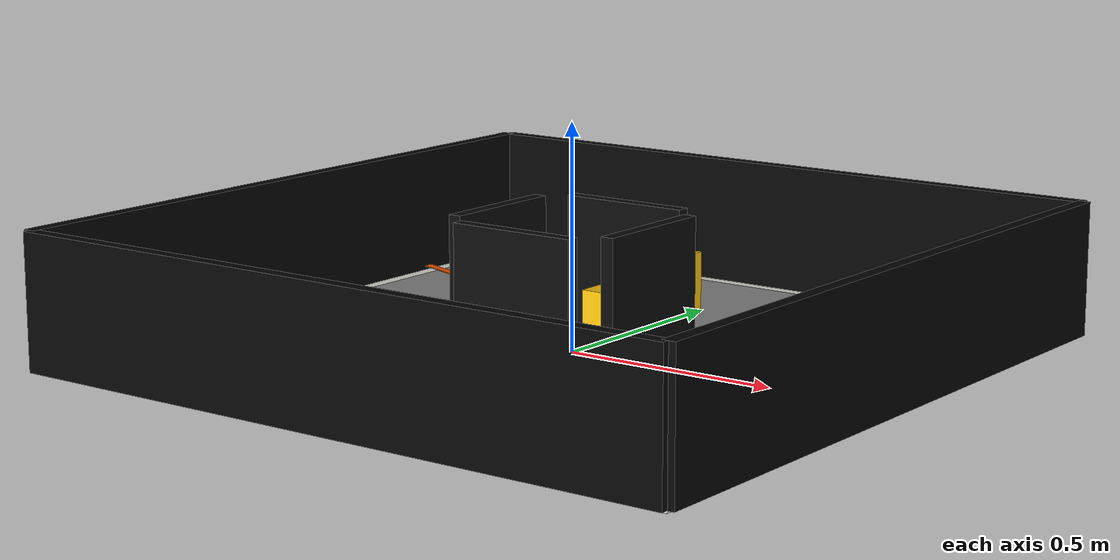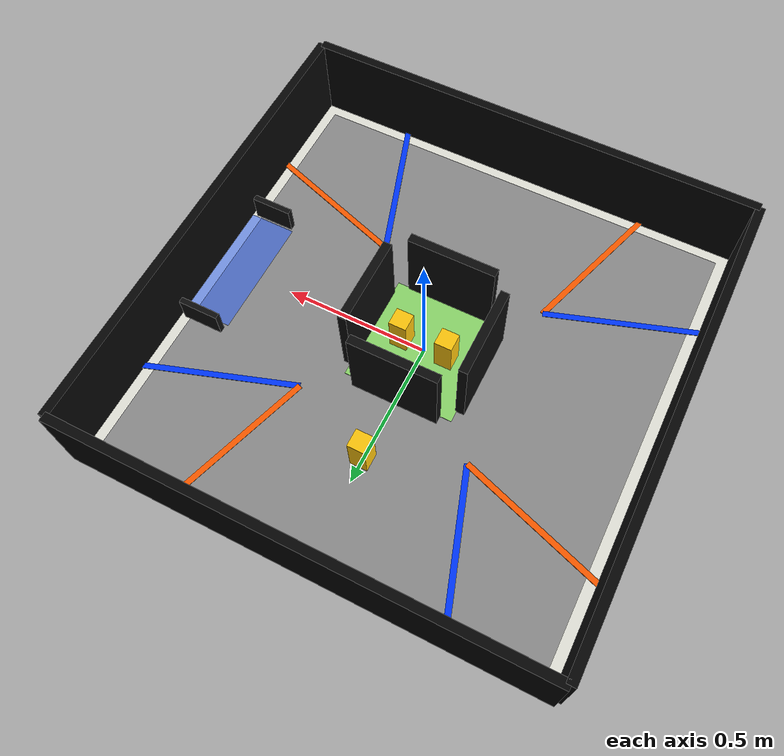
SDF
<sdf version="1.8">
 <world name="wro2026">
  <physics name="fast_step" type="ignored">
   <max_step_size>0.005</max_step_size>
   <real_time_factor>1.0</real_time_factor>
  </physics>
  <plugin filename="gz-sim-physics-system" name="gz::sim::systems::Physics"/>
  <plugin filename="gz-sim-sensors-system" name="gz::sim::systems::Sensors">
   <render_engine>ogre2</render_engine>
  </plugin>
  <plugin filename="gz-sim-scene-broadcaster-system" name="gz::sim::systems::SceneBroadcaster"/>
  <plugin filename="gz-sim-user-commands-system" name="gz::sim::systems::UserCommands"/>
  <light name="sun" type="directional">
   <cast_shadows>false</cast_shadows>
   <pose>0 0 10 0 0 0</pose>
   <diffuse>0.8 0.8 0.8 1</diffuse>
   <specular>0.1 0.1 0.1 1</specular>
   <direction>-0.5 0.1 -0.9</direction>
  </light>
  <model name="ground_1600">
   <static>true</static>
   <link name="link">
    <collision name="col"><geometry><box><size>1.6 1.6 0.01</size></box></geometry></collision>
    <visual name="base">
     <geometry><box><size>1.6 1.6 0.01</size></box></geometry>
     <material><ambient>0.90 0.90 0.86 1</ambient><diffuse>0.90 0.90 0.86 1</diffuse></material>
    </visual>
    <visual name="track">
     <pose>0 0 0.006 0 0 0</pose>
     <geometry><box><size>1.50 1.50 0.002</size></box></geometry>
     <material><ambient>0.55 0.55 0.55 1</ambient><diffuse>0.55 0.55 0.55 1</diffuse></material>
    </visual>
   </link>
  </model>
  <model name="wall_north">
   <static>true</static>
   <pose>0 0.8 0.15 0 0 0</pose>
   <link name="link">
    <collision name="col"><geometry><box><size>1.6 0.03 0.30</size></box></geometry></collision>
    <visual name="vis">
     <geometry><box><size>1.6 0.03 0.30</size></box></geometry>
     <material><ambient>0.02 0.02 0.02 1</ambient><diffuse>0.02 0.02 0.02 1</diffuse></material>
    </visual>
   </link>
  </model>
  <model name="wall_south">
   <static>true</static>
   <pose>0 -0.8 0.15 0 0 0</pose>
   <link name="link">
    <collision name="col"><geometry><box><size>1.6 0.03 0.30</size></box></geometry></collision>
    <visual name="vis">
     <geometry><box><size>1.6 0.03 0.30</size></box></geometry>
     <material><ambient>0.02 0.02 0.02 1</ambient><diffuse>0.02 0.02 0.02 1</diffuse></material>
    </visual>
   </link>
  </model>
  <model name="wall_east">
   <static>true</static>
   <pose>0.8 0 0.15 0 0 0</pose>
   <link name="link">
    <collision name="col"><geometry><box><size>0.03 1.6 0.30</size></box></geometry></collision>
    <visual name="vis">
     <geometry><box><size>0.03 1.6 0.30</size></box></geometry>
     <material><ambient>0.02 0.02 0.02 1</ambient><diffuse>0.02 0.02 0.02 1</diffuse></material>
    </visual>
   </link>
  </model>
  <model name="wall_west">
   <static>true</static>
   <pose>-0.8 0 0.15 0 0 0</pose>
   <link name="link">
    <collision name="col"><geometry><box><size>0.03 1.6 0.30</size></box></geometry></collision>
    <visual name="vis">
     <geometry><box><size>0.03 1.6 0.30</size></box></geometry>
     <material><ambient>0.02 0.02 0.02 1</ambient><diffuse>0.02 0.02 0.02 1</diffuse></material>
    </visual>
   </link>
  </model>
  <model name="central_island_floor">
   <static>true</static>
   <pose>0 0 0.011 0 0 0</pose>
   <link name="link">
    <visual name="green_center">
     <geometry><box><size>0.38 0.38 0.002</size></box></geometry>
     <material><ambient>0.55 0.85 0.42 1</ambient><diffuse>0.55 0.85 0.42 1</diffuse></material>
    </visual>
   </link>
  </model>
  <model name="island_wall_north">
   <static>true</static>
   <pose>0 0.2 0.15 0 0 0</pose>
   <link name="link">
    <collision name="col"><geometry><box><size>0.30 0.03 0.30</size></box></geometry></collision>
    <visual name="vis">
     <geometry><box><size>0.30 0.03 0.30</size></box></geometry>
     <material><ambient>0.04 0.04 0.04 1</ambient><diffuse>0.04 0.04 0.04 1</diffuse></material>
    </visual>
   </link>
  </model>
  <model name="island_wall_south">
   <static>true</static>
   <pose>0 -0.2 0.15 0 0 0</pose>
   <link name="link">
    <collision name="col"><geometry><box><size>0.30 0.03 0.30</size></box></geometry></collision>
    <visual name="vis">
     <geometry><box><size>0.30 0.03 0.30</size></box></geometry>
     <material><ambient>0.04 0.04 0.04 1</ambient><diffuse>0.04 0.04 0.04 1</diffuse></material>
    </visual>
   </link>
  </model>
  <model name="island_wall_east">
   <static>true</static>
   <pose>0.2 0 0.15 0 0 0</pose>
   <link name="link">
    <collision name="col"><geometry><box><size>0.03 0.30 0.30</size></box></geometry></collision>
    <visual name="vis">
     <geometry><box><size>0.03 0.30 0.30</size></box></geometry>
     <material><ambient>0.04 0.04 0.04 1</ambient><diffuse>0.04 0.04 0.04 1</diffuse></material>
    </visual>
   </link>
  </model>
  <model name="island_wall_west">
   <static>true</static>
   <pose>-0.2 0 0.15 0 0 0</pose>
   <link name="link">
    <collision name="col"><geometry><box><size>0.03 0.30 0.30</size></box></geometry></collision>
    <visual name="vis">
     <geometry><box><size>0.03 0.30 0.30</size></box></geometry>
     <material><ambient>0.04 0.04 0.04 1</ambient><diffuse>0.04 0.04 0.04 1</diffuse></material>
    </visual>
   </link>
  </model>
  <model name="parking_zone">
   <static>true</static>
   <pose>0.70 0 0.013 0 0 0</pose>
   <link name="link">
    <visual name="vis">
     <geometry><box><size>0.16 0.42 0.002</size></box></geometry>
     <material><ambient>0.16 0.38 1.0 0.55</ambient><diffuse>0.16 0.38 1.0 0.55</diffuse></material>
    </visual>
   </link>
  </model>
  <model name="parking_block_top">
   <static>true</static>
   <pose>0.70 0.23 0.05 0 0 0</pose>
   <link name="link">
    <visual name="vis">
     <geometry><box><size>0.14 0.02 0.10</size></box></geometry>
     <material><ambient>0.05 0.05 0.05 1</ambient><diffuse>0.05 0.05 0.05 1</diffuse></material>
    </visual>
   </link>
  </model>
  <model name="parking_block_bottom">
   <static>true</static>
   <pose>0.70 -0.23 0.05 0 0 0</pose>
   <link name="link">
    <visual name="vis">
     <geometry><box><size>0.14 0.02 0.10</size></box></geometry>
     <material><ambient>0.05 0.05 0.05 1</ambient><diffuse>0.05 0.05 0.05 1</diffuse></material>
    </visual>
   </link>
  </model>
  <model name="obstacle_yellow_left">
   <static>true</static>
   <pose>-0.08 0.00 0.075 0 0 0</pose>
   <link name="link">
    <collision name="col"><geometry><box><size>0.06 0.06 0.15</size></box></geometry></collision>
    <visual name="vis">
     <geometry><box><size>0.06 0.06 0.15</size></box></geometry>
     <material><ambient>1.0 0.78 0.05 1</ambient><diffuse>1.0 0.78 0.05 1</diffuse></material>
    </visual>
   </link>
  </model>
  <model name="obstacle_yellow_mid">
   <static>true</static>
   <pose>0.00 0.42 0.075 0 0 0</pose>
   <link name="link">
    <collision name="col"><geometry><box><size>0.06 0.06 0.15</size></box></geometry></collision>
    <visual name="vis">
     <geometry><box><size>0.06 0.06 0.15</size></box></geometry>
     <material><ambient>1.0 0.78 0.05 1</ambient><diffuse>1.0 0.78 0.05 1</diffuse></material>
    </visual>
   </link>
  </model>
  <model name="obstacle_yellow_right">
   <static>true</static>
   <pose>0.08 0.00 0.075 0 0 0</pose>
   <link name="link">
    <collision name="col"><geometry><box><size>0.06 0.06 0.15</size></box></geometry></collision>
    <visual name="vis">
     <geometry><box><size>0.06 0.06 0.15</size></box></geometry>
     <material><ambient>1.0 0.78 0.05 1</ambient><diffuse>1.0 0.78 0.05 1</diffuse></material>
    </visual>
   </link>
  </model>
  <model name="orange_line_ne">
   <static>true</static>
   <pose>0.3775 0.5450 0.014 0 0 -1.8895</pose>
   <link name="link">
    <visual name="vis">
     <geometry><box><size>0.527 0.02 0.002</size></box></geometry>
     <material><ambient>1.0 0.36 0 1</ambient><diffuse>1.0 0.36 0 1</diffuse></material>
    </visual>
   </link>
  </model>
  <model name="blue_line_ne">
   <static>true</static>
   <pose>0.5450 0.3775 0.014 0 0 -2.8228</pose>
   <link name="link">
    <visual name="vis">
     <geometry><box><size>0.527 0.02 0.002</size></box></geometry>
     <material><ambient>0.0 0.22 1.0 1</ambient><diffuse>0.0 0.22 1.0 1</diffuse></material>
    </visual>
   </link>
  </model>
  <model name="orange_line_se">
   <static>true</static>
   <pose>0.5450 -0.3775 0.014 0 0 2.8228</pose>
   <link name="link">
    <visual name="vis">
     <geometry><box><size>0.527 0.02 0.002</size></box></geometry>
     <material><ambient>1.0 0.36 0 1</ambient><diffuse>1.0 0.36 0 1</diffuse></material>
    </visual>
   </link>
  </model>
  <model name="blue_line_se">
   <static>true</static>
   <pose>0.3775 -0.5450 0.014 0 0 1.8895</pose>
   <link name="link">
    <visual name="vis">
     <geometry><box><size>0.527 0.02 0.002</size></box></geometry>
     <material><ambient>0.0 0.22 1.0 1</ambient><diffuse>0.0 0.22 1.0 1</diffuse></material>
    </visual>
   </link>
  </model>
  <model name="orange_line_sw">
   <static>true</static>
   <pose>-0.3775 -0.5450 0.014 0 0 1.2520</pose>
   <link name="link">
    <visual name="vis">
     <geometry><box><size>0.527 0.02 0.002</size></box></geometry>
     <material><ambient>1.0 0.36 0 1</ambient><diffuse>1.0 0.36 0 1</diffuse></material>
    </visual>
   </link>
  </model>
  <model name="blue_line_sw">
   <static>true</static>
   <pose>-0.5450 -0.3775 0.014 0 0 0.3187</pose>
   <link name="link">
    <visual name="vis">
     <geometry><box><size>0.527 0.02 0.002</size></box></geometry>
     <material><ambient>0.0 0.22 1.0 1</ambient><diffuse>0.0 0.22 1.0 1</diffuse></material>
    </visual>
   </link>
  </model>
  <model name="orange_line_nw">
   <static>true</static>
   <pose>-0.5450 0.3775 0.014 0 0 -0.3187</pose>
   <link name="link">
    <visual name="vis">
     <geometry><box><size>0.527 0.02 0.002</size></box></geometry>
     <material><ambient>1.0 0.36 0 1</ambient><diffuse>1.0 0.36 0 1</diffuse></material>
    </visual>
   </link>
  </model>
  <model name="blue_line_nw">
   <static>true</static>
   <pose>-0.3775 0.5450 0.014 0 0 -1.2520</pose>
   <link name="link">
    <visual name="vis">
     <geometry><box><size>0.527 0.02 0.002</size></box></geometry>
     <material><ambient>0.0 0.22 1.0 1</ambient><diffuse>0.0 0.22 1.0 1</diffuse></material>
    </visual>
   </link>
  </model>
 </world>
</sdf>
